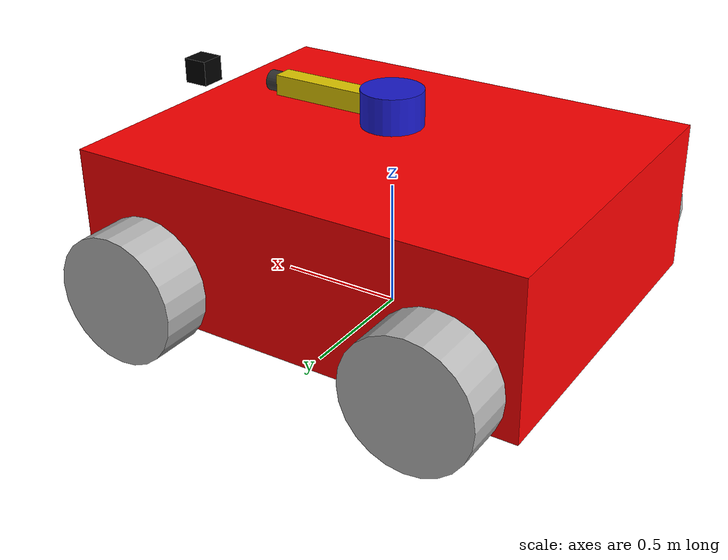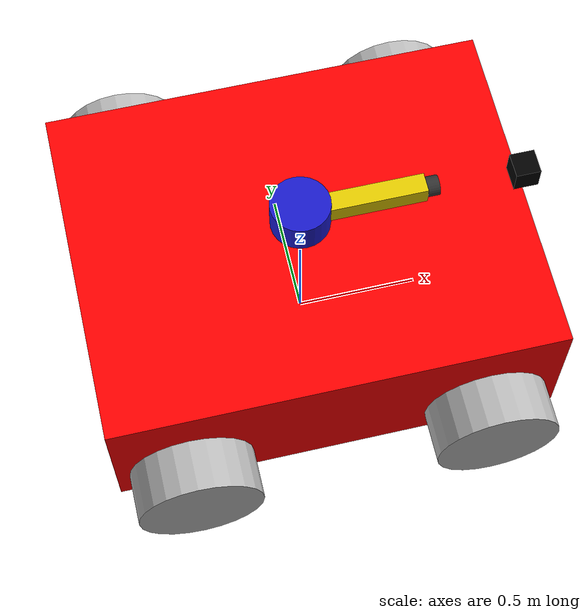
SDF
<?xml version="1.0" ?>
<sdf version="1.10">

  <model name="tonk" canonical_link="base">
    <!-- Spawn height so wheels touch ground: wheel_center = spawn_z + wheel_offset(-0.15) = radius(0.25) → spawn_z = 0.40 -->
    <pose>0 0 0.40 0 0 0</pose>

    <!-- Diff Drive Plugin -->
    <plugin filename="gz-sim-diff-drive-system"
            name="gz::sim::systems::DiffDrive">
      <left_joint>left_front_joint</left_joint>
      <left_joint>left_rear_joint</left_joint>
      <right_joint>right_front_joint</right_joint>
      <right_joint>right_rear_joint</right_joint>
      <wheel_separation>1.6</wheel_separation>
      <wheel_radius>0.25</wheel_radius>
      <topic>/cmd_vel</topic>
      <odom_publish_frequency>50</odom_publish_frequency>
      <odom_topic>/odom</odom_topic>
      <tf_topic>/tf</tf_topic>
    </plugin>

    <!-- Odometry from Wheels Plugin -->
    <plugin filename="gz-sim-odometry-publisher-system"
            name="gz::sim::systems::OdometryPublisher">
      <dimensions>3</dimensions>
    </plugin>

    <!-- Base Link -->
    <link name="base">
      <inertial>
        <mass>40</mass>
        <inertia><ixx>7.73</ixx><iyy>12.0</iyy><izz>17.33</izz><ixy>0</ixy><ixz>0</ixz><iyz>0</iyz></inertia>
      </inertial>
      <visual name="visual">
        <geometry><box><size>1.8 1.4 0.6</size></box></geometry>
        <material>
          <ambient>1 0 0 1</ambient>
          <diffuse>1 0 0 1</diffuse>
        </material>
      </visual>
      <collision name="collision">
        <geometry><box><size>1.8 1.4 0.6</size></box></geometry>
      </collision>
    </link>

    <!-- Wheels -->
    <link name="left_front">
      <pose>0.6 0.8 -0.15 -1.57 0 0</pose>
      <inertial><mass>2</mass></inertial>
      <visual name="visual"><geometry><cylinder><radius>0.25</radius><length>0.2</length></cylinder></geometry></visual>
      <collision name="collision">
        <geometry><sphere><radius>0.25</radius></sphere></geometry>
        <surface><friction><ode>
          <mu>1.5</mu><mu2>0.3</mu2><fdir1>1 0 0</fdir1>
        </ode></friction></surface>
      </collision>
    </link>
    <link name="right_front">
      <pose>0.6 -0.8 -0.15 -1.57 0 0</pose>
      <inertial><mass>2</mass></inertial>
      <visual name="visual"><geometry><cylinder><radius>0.25</radius><length>0.2</length></cylinder></geometry></visual>
      <collision name="collision">
        <geometry><sphere><radius>0.25</radius></sphere></geometry>
        <surface><friction><ode>
          <mu>1.5</mu><mu2>0.3</mu2><fdir1>1 0 0</fdir1>
        </ode></friction></surface>
      </collision>
    </link>
    <link name="left_rear">
      <pose>-0.6 0.8 -0.15 -1.57 0 0</pose>
      <inertial><mass>2</mass></inertial>
      <visual name="visual"><geometry><cylinder><radius>0.25</radius><length>0.2</length></cylinder></geometry></visual>
      <collision name="collision">
        <geometry><sphere><radius>0.25</radius></sphere></geometry>
        <surface><friction><ode>
          <mu>1.5</mu><mu2>0.3</mu2><fdir1>1 0 0</fdir1>
        </ode></friction></surface>
      </collision>
    </link>
    <link name="right_rear">
      <pose>-0.6 -0.8 -0.15 -1.57 0 0</pose>
      <inertial><mass>2</mass></inertial>
      <visual name="visual"><geometry><cylinder><radius>0.25</radius><length>0.2</length></cylinder></geometry></visual>
      <collision name="collision">
        <geometry><sphere><radius>0.25</radius></sphere></geometry>
        <surface><friction><ode>
          <mu>1.5</mu><mu2>0.3</mu2><fdir1>1 0 0</fdir1>
        </ode></friction></surface>
      </collision>
    </link>

    <!-- IMU Sensor -->
    <link name="imu">
      <pose>0 0 0.3 0 0 0</pose>
      <inertial>
        <mass>0.1</mass>
        <inertia><ixx>0.001</ixx><iyy>0.001</iyy><izz>0.001</izz></inertia>
      </inertial>
      <sensor name="imu_sensor" type="imu">
        <pose>0 0 0 0 0 0</pose>
        <always_on>true</always_on>
        <update_rate>100</update_rate>
        <imu>
          <angular_velocity>
            <x>
              <noise type="gaussian">
                <mean>0</mean>
                <stddev>0.001</stddev>
              </noise>
            </x>
            <y>
              <noise type="gaussian">
                <mean>0</mean>
                <stddev>0.001</stddev>
              </noise>
            </y>
            <z>
              <noise type="gaussian">
                <mean>0</mean>
                <stddev>0.001</stddev>
              </noise>
            </z>
          </angular_velocity>
          <linear_acceleration>
            <x>
              <noise type="gaussian">
                <mean>0</mean>
                <stddev>0.01</stddev>
              </noise>
            </x>
            <y>
              <noise type="gaussian">
                <mean>0</mean>
                <stddev>0.01</stddev>
              </noise>
            </y>
            <z>
              <noise type="gaussian">
                <mean>0</mean>
                <stddev>0.01</stddev>
              </noise>
            </z>
          </linear_acceleration>
        </imu>
        <topic>/imu</topic>
      </sensor>
    </link>

    <!-- Pov camera -->
      <!-- link -->
      <link name="camera_link">
        <pose>0.9 0 0.4 0 0 0</pose> <inertial>
          <mass>0.1</mass>
          <inertia>
            <ixx>0.0001</ixx><iyy>0.0001</iyy><izz>0.0001</izz>
          </inertia>
        </inertial>
        <visual name="visual">
          <geometry><box><size>0.1 0.1 0.1</size></box></geometry>
          <material>
            <ambient>0 0 0 1</ambient>
            <diffuse>0 0 0 1</diffuse>
          </material>
        </visual>
        <!-- sensor -->
        <sensor name="camera" type="camera">
          <pose>0 0 0 0 0 0</pose>
          <always_on>1</always_on>
          <update_rate>30</update_rate>
          <visualize>true</visualize>
          <topic>camera/image_raw</topic>
          <camera>
            <horizontal_fov>1.05</horizontal_fov>
            <image>
              <width>640</width>
              <height>480</height>
            </image>
            <clip>
              <near>0.1</near>
              <far>100</far>
            </clip>
          </camera>
        </sensor>
      </link>
      <!-- joint -->
      <joint name="camera_joint" type="fixed">
        <parent>base</parent>
        <child>camera_link</child>
      </joint>

    <!-- LiDAR -->
    <link name="lidar">
      <pose>0 0 0.8 0 0 0</pose>
      <sensor name="lidar_sensor" type="gpu_lidar">
        <pose>0 0 0 0 0 0</pose>
        <always_on>true</always_on>
        <update_rate>10</update_rate>
        <visualize>true</visualize>
        <topic>/lidar</topic>
        <lidar>
          <scan>
            <horizontal>
              <samples>360</samples>
              <resolution>1</resolution>
              <min_angle>-3.14159</min_angle>
              <max_angle>3.14159</max_angle>
            </horizontal>
            <vertical>
              <samples>16</samples>
              <resolution>1</resolution>
              <min_angle>-0.2617</min_angle>
              <max_angle>0.2617</max_angle>
            </vertical>
          </scan>
          <range>
            <min>0.3</min>
            <max>40.0</max>
            <resolution>0.01</resolution>
          </range>
        </lidar>
      </sensor>
    </link>

    <!-- Feature Thermal Camera -->
    <link name="thermal_camera">
    <pose>0.05 0.05 0.05 0 0 0</pose>
    <collision name="collision">
      <geometry>
        <box>
          <size>0.1 0.1 0.1</size>
        </box>
      </geometry>
    </collision>
    <visual name="visual">
      <geometry>
        <box>
          <size>0.1 0.1 0.1</size>
        </box>
      </geometry>
    </visual>
    <sensor name="thermal_camera_8bit" type="thermal">
      <camera>
        <horizontal_fov>1.047</horizontal_fov>
        <image>
          <width>320</width>
          <height>240</height>
          <format>L8</format>
        </image>
        <clip>
          <near>0.1</near>
          <far>100</far>
        </clip>
      </camera>
      <always_on>1</always_on>
      <update_rate>30</update_rate>
      <visualize>true</visualize>
      <topic>thermal_camera_8bit/image</topic>
      <plugin
        filename="ignition-gazebo-thermal-sensor-system"
        name="gz::sim::systems::ThermalSensor">
        <min_temp>253.15</min_temp>
        <max_temp>673.15</max_temp>
        <resolution>3.0</resolution>
      </plugin>
    </sensor>
  </link>

    <!-- Thermal camera joint -->
    <joint name="thermal_joint" type="fixed">
      <parent>base</parent>
      <child>thermal_camera</child>
    </joint>

    <!-- Joints: axis expressed in model frame, Y = wheel axle (lateral direction) -->
    <joint name="left_front_joint" type="revolute">
      <parent>base</parent><child>left_front</child>
      <axis>
        <xyz expressed_in="__model__">0 1 0</xyz>
        <limit><effort>100</effort><velocity>20</velocity></limit>
        <dynamics><damping>0.05</damping></dynamics>
      </axis>
    </joint>
    <joint name="right_front_joint" type="revolute">
      <parent>base</parent><child>right_front</child>
      <axis>
        <xyz expressed_in="__model__">0 1 0</xyz>
        <limit><effort>100</effort><velocity>20</velocity></limit>
        <dynamics><damping>0.05</damping></dynamics>
      </axis>
    </joint>
    <joint name="left_rear_joint" type="revolute">
      <parent>base</parent><child>left_rear</child>
      <axis>
        <xyz expressed_in="__model__">0 1 0</xyz>
        <limit><effort>100</effort><velocity>20</velocity></limit>
        <dynamics><damping>0.05</damping></dynamics>
      </axis>
    </joint>
    <joint name="right_rear_joint" type="revolute">
      <parent>base</parent><child>right_rear</child>
      <axis>
        <xyz expressed_in="__model__">0 1 0</xyz>
        <limit><effort>100</effort><velocity>20</velocity></limit>
        <dynamics><damping>0.05</damping></dynamics>
      </axis>
    </joint>
    <joint name="imu_joint" type="fixed">
      <parent>base</parent>
      <child>imu</child>
    </joint>

    <joint name="lidar_joint" type="fixed">
      <parent>base</parent>
      <child>lidar</child>
    </joint>

    <!-- Pan platform (blauw cilindertje) -->
    <link name="hose_base">
      <pose>0 0 0.42 0 0 0</pose>
      <inertial>
        <mass>1.0</mass>
        <inertia><ixx>0.005</ixx><iyy>0.005</iyy><izz>0.007</izz><ixy>0</ixy><ixz>0</ixz><iyz>0</iyz></inertia>
      </inertial>
      <visual name="visual">
        <geometry><cylinder><radius>0.12</radius><length>0.14</length></cylinder></geometry>
        <material>
          <ambient>0.1 0.1 0.8 1</ambient>
          <diffuse>0.1 0.1 0.8 1</diffuse>
        </material>
      </visual>
      <collision name="collision">
        <geometry><cylinder><radius>0.12</radius><length>0.14</length></cylinder></geometry>
      </collision>
    </link>

    <!-- Slangloop / kanon (geel balk, kantelt van horizontaal naar verticaal) -->
    <link name="hose_nozzle">
      <pose>0 0 0.42 0 0 0</pose>
      <inertial>
        <!-- Zwaartepunt op 0.25 m voor de link-origin (midden van het balk) -->
        <pose>0.25 0 0 0 0 0</pose>
        <mass>0.5</mass>
        <inertia><ixx>0.001</ixx><iyy>0.011</iyy><izz>0.011</izz><ixy>0</ixy><ixz>0</ixz><iyz>0</iyz></inertia>
      </inertial>
      <!-- Balk die vooruit wijst (0.5 m lang, 8×8 cm doorsnede) -->
      <visual name="barrel_visual">
        <pose>0.25 0 0 0 0 0</pose>
        <geometry><box><size>0.5 0.08 0.08</size></box></geometry>
        <material>
          <ambient>0.9 0.8 0.0 1</ambient>
          <diffuse>0.9 0.8 0.0 1</diffuse>
        </material>
      </visual>
      <!-- Mondstuk-punt (klein cilindertje aan het uiteinde) -->
      <visual name="tip_visual">
        <pose>0.52 0 0 0 1.5708 0</pose>
        <geometry><cylinder><radius>0.04</radius><length>0.06</length></cylinder></geometry>
        <material>
          <ambient>0.2 0.2 0.2 1</ambient>
          <diffuse>0.2 0.2 0.2 1</diffuse>
        </material>
      </visual>
      <collision name="collision">
        <pose>0.25 0 0 0 0 0</pose>
        <geometry><box><size>0.5 0.08 0.08</size></box></geometry>
      </collision>
    </link>

    <!-- Pan joint: hose_base draait volledig (360°) om de Z-as -->
    <joint name="hose_pan_joint" type="revolute">
      <parent>base</parent>
      <child>hose_base</child>
      <axis>
        <xyz>0 0 1</xyz>
        <limit>
          <lower>-3.14159</lower>
          <upper>3.14159</upper>
          <effort>20</effort>
          <velocity>1.5</velocity>
        </limit>
        <dynamics><damping>0.4</damping></dynamics>
      </axis>
    </joint>

    <!-- Tilt joint: positieve hoek = omhoog (as geflipt: 0 -1 0 zodat +angle → +Z richting) -->
    <joint name="hose_tilt_joint" type="revolute">
      <parent>hose_base</parent>
      <child>hose_nozzle</child>
      <axis>
        <xyz>0 -1 0</xyz>
        <limit>
          <lower>0.05</lower>
          <upper>1.5708</upper>
          <effort>20</effort>
          <velocity>1.5</velocity>
        </limit>
        <dynamics><damping>0.4</damping></dynamics>
      </axis>
    </joint>

    <!-- JointPositionController: Pan (ontvangt gz.msgs.Double → std_msgs/Float64 via bridge) -->
    <plugin filename="gz-sim-joint-position-controller-system"
            name="gz::sim::systems::JointPositionController">
      <joint_name>hose_pan_joint</joint_name>
      <topic>/hose_pan_cmd</topic>
      <p_gain>3.0</p_gain>
      <i_gain>0.0</i_gain>
      <d_gain>0.2</d_gain>
      <i_max>1.0</i_max>
      <i_min>-1.0</i_min>
    </plugin>

    <!-- JointPositionController: Tilt -->
    <plugin filename="gz-sim-joint-position-controller-system"
            name="gz::sim::systems::JointPositionController">
      <joint_name>hose_tilt_joint</joint_name>
      <topic>/hose_tilt_cmd</topic>
      <p_gain>3.0</p_gain>
      <i_gain>0.0</i_gain>
      <d_gain>0.2</d_gain>
      <i_max>1.0</i_max>
      <i_min>-1.0</i_min>
    </plugin>

  </model>
</sdf>
